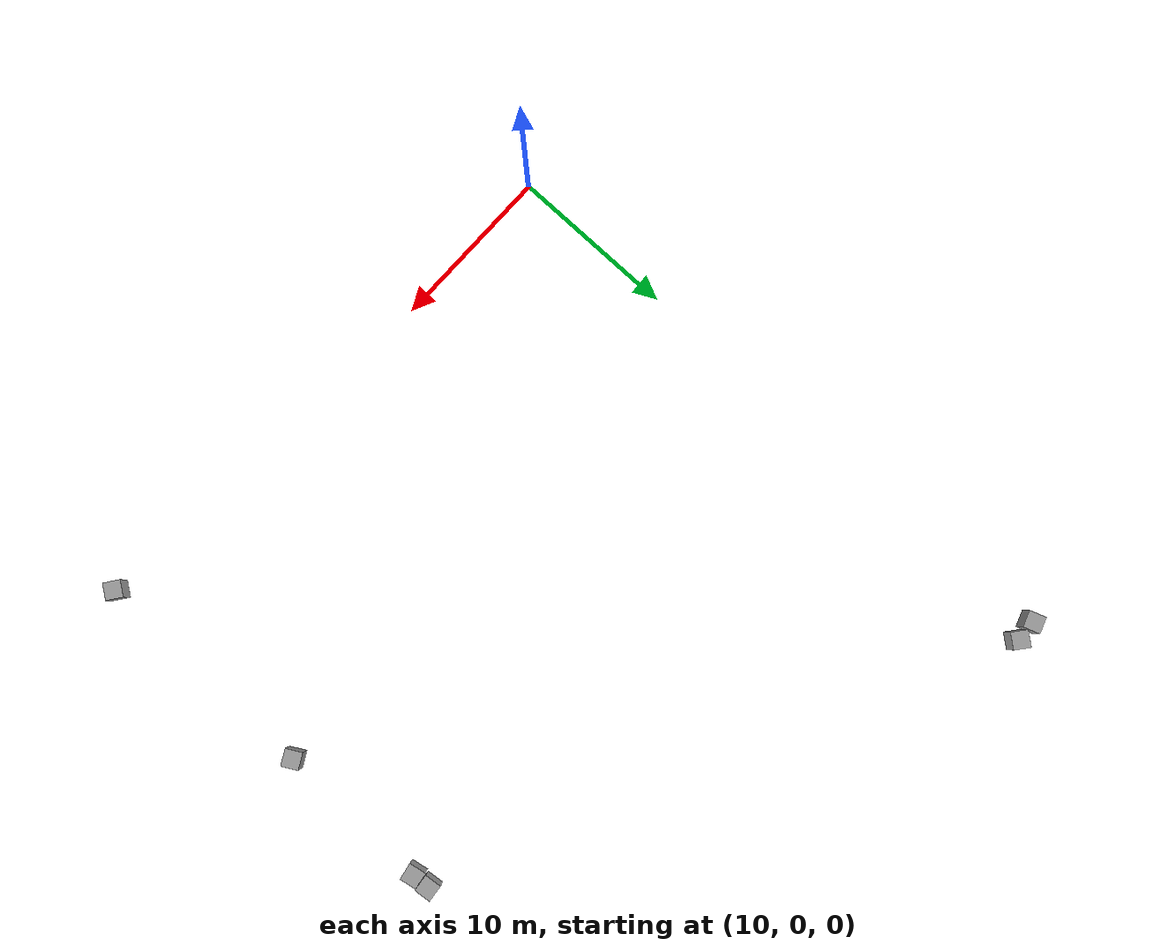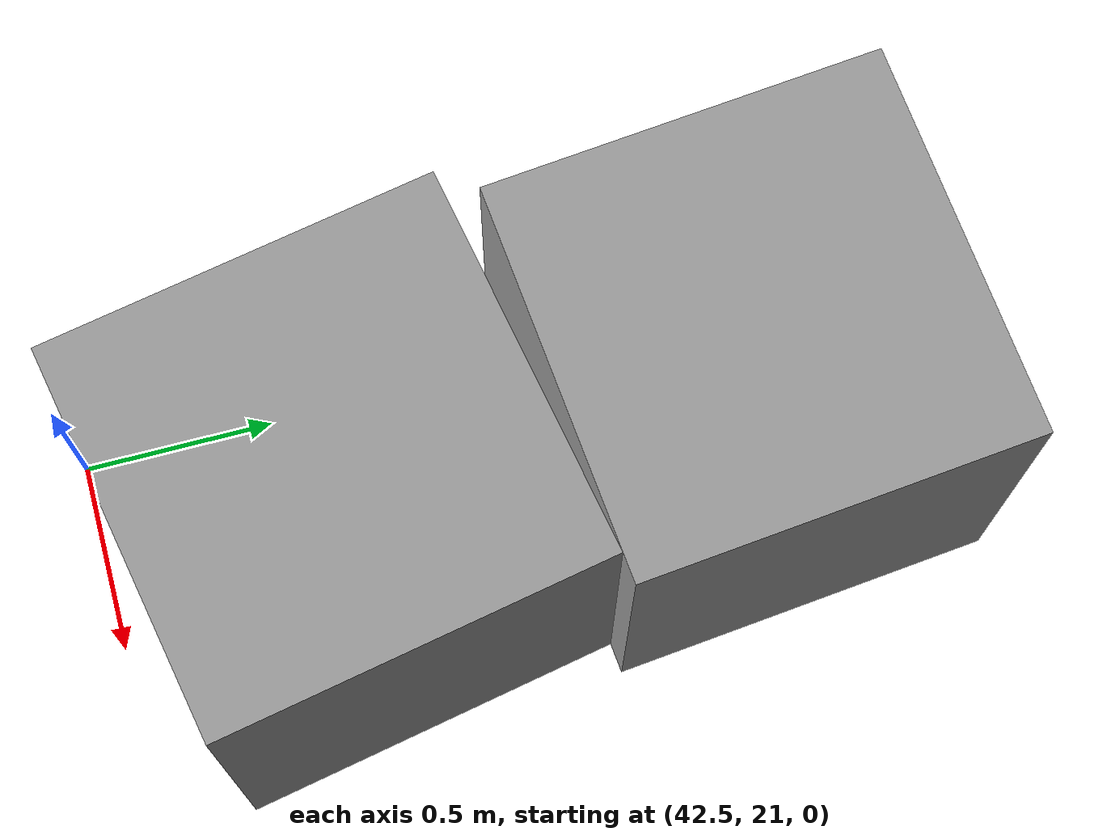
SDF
<sdf version="1.7">
 <world name="default">
  <light name="sun" type="directional">
   <pose>0 0 10 0 -0 0</pose>
   <diffuse>0.8 0.8 0.8 1</diffuse>
   <specular>0.1 0.1 0.1 1</specular>
   <attenuation>
    <range>1000</range>
    <constant>0.9</constant>
    <linear>0.01</linear>
    <quadratic>0.001</quadratic>
   </attenuation>
   <direction>-0.5 0.5 -1</direction>
   <spot><inner_angle>0</inner_angle><outer_angle>0</outer_angle><falloff>0</falloff></spot>
  </light>
  <gravity>0 0 -9.8</gravity>
  <magnetic_field>6e-06 2.3e-05 -4.2e-05</magnetic_field>
  <atmosphere type="adiabatic"/>
  <physics name="default_physics" default="0" type="ode">
   <max_step_size>0.001</max_step_size>
   <real_time_factor>1</real_time_factor>
   <real_time_update_rate>1000</real_time_update_rate>
  </physics>
  <scene>
   <ambient>0.4 0.4 0.4 1</ambient>
   <background>0.7 0.7 0.7 1</background>
   <shadows>1</shadows>
   <grid>0</grid>
  </scene>
  <spherical_coordinates>
   <surface_model>EARTH_WGS84</surface_model>
   <world_frame_orientation>ENU</world_frame_orientation>
   <latitude_deg>0</latitude_deg>
   <longitude_deg>0</longitude_deg>
   <elevation>0</elevation>
   <heading_deg>0</heading_deg>
  </spherical_coordinates>
  <light name="user_point_light_0" type="point">
   <pose>3 3 3 0 -0 0</pose>
   <diffuse>0.5 0.5 0.5 1</diffuse>
   <specular>0.1 0.1 0.1 1</specular>
   <attenuation>
    <range>20</range>
    <constant>0.5</constant>
    <linear>0.01</linear>
    <quadratic>0.001</quadratic>
   </attenuation>
   <cast_shadows>0</cast_shadows>
   <direction>0 0 -1</direction>
   <spot><inner_angle>0</inner_angle><outer_angle>0</outer_angle><falloff>0</falloff></spot>
  </light>
  <light name="user_point_light_3" type="point">
   <pose>-3 -3 3 0 -0 0</pose>
   <diffuse>0.5 0.5 0.5 1</diffuse>
   <specular>0.1 0.1 0.1 1</specular>
   <attenuation>
    <range>20</range>
    <constant>0.5</constant>
    <linear>0.01</linear>
    <quadratic>0.001</quadratic>
   </attenuation>
   <cast_shadows>0</cast_shadows>
   <direction>0 0 -1</direction>
   <spot><inner_angle>0</inner_angle><outer_angle>0</outer_angle><falloff>0</falloff></spot>
  </light>
  <light name="user_point_light_2" type="point">
   <pose>-3 3 3 0 -0 0</pose>
   <diffuse>0.5 0.5 0.5 1</diffuse>
   <specular>0.1 0.1 0.1 1</specular>
   <attenuation>
    <range>20</range>
    <constant>0.5</constant>
    <linear>0.01</linear>
    <quadratic>0.001</quadratic>
   </attenuation>
   <cast_shadows>0</cast_shadows>
   <direction>0 0 -1</direction>
   <spot><inner_angle>0</inner_angle><outer_angle>0</outer_angle><falloff>0</falloff></spot>
  </light>
  <light name="user_point_light_1" type="point">
   <pose>3 -3 3 0 -0 0</pose>
   <diffuse>0.5 0.5 0.5 1</diffuse>
   <specular>0.1 0.1 0.1 1</specular>
   <attenuation>
    <range>20</range>
    <constant>0.5</constant>
    <linear>0.01</linear>
    <quadratic>0.001</quadratic>
   </attenuation>
   <cast_shadows>0</cast_shadows>
   <direction>0 0 -1</direction>
   <spot><inner_angle>0</inner_angle><outer_angle>0</outer_angle><falloff>0</falloff></spot>
  </light>
  <model name="ground_plane">
   <static>1</static>
   <link name="link">
    <collision name="ground_plane_collision">
     <geometry><plane><normal>0 0 1</normal><size>20 20</size></plane></geometry>
     <surface>
      <contact><collide_bitmask>65535</collide_bitmask></contact>
      <friction><ode><mu>100</mu><mu2>50</mu2></ode></friction>
     </surface>
    </collision>
   </link>
  </model>
  <audio><device>default</device></audio>
  <model name="unit_box">
   <pose>42.7388 -1.22692 0.5 0 -0 0.94177</pose>
   <link name="link">
    <inertial>
     <mass>1</mass>
     <inertia>
      <ixx>0.166667</ixx>
      <ixy>0</ixy>
      <ixz>0</ixz>
      <iyy>0.166667</iyy>
      <iyz>0</iyz>
      <izz>0.166667</izz>
     </inertia>
    </inertial>
    <collision name="collision"><geometry><box><size>1 1 1</size></box></geometry></collision>
    <visual name="visual">
     <geometry><box><size>1 1 1</size></box></geometry>
     <material>
      <script><name>Gazebo/Grey</name><uri>file://media/materials/scripts/gazebo.material</uri></script>
     </material>
    </visual>
   </link>
  </model>
  <model name="unit_box_0">
   <pose>42.7884 12.4661 0.499994 0 9e-06 0.501792</pose>
   <link name="link">
    <inertial>
     <mass>1</mass>
     <inertia>
      <ixx>0.166667</ixx>
      <ixy>0</ixy>
      <ixz>0</ixz>
      <iyy>0.166667</iyy>
      <iyz>0</iyz>
      <izz>0.166667</izz>
     </inertia>
    </inertial>
    <collision name="collision"><geometry><box><size>1 1 1</size></box></geometry></collision>
    <visual name="visual">
     <geometry><box><size>1 1 1</size></box></geometry>
     <material>
      <script><name>Gazebo/Grey</name><uri>file://media/materials/scripts/gazebo.material</uri></script>
     </material>
    </visual>
   </link>
  </model>
  <model name="unit_box_1">
   <pose>42.904 21.632 0.499996 0 9e-06 0.188824</pose>
   <link name="link">
    <inertial>
     <mass>1</mass>
     <inertia>
      <ixx>0.166667</ixx>
      <ixy>0</ixy>
      <ixz>0</ixz>
      <iyy>0.166667</iyy>
      <iyz>0</iyz>
      <izz>0.166667</izz>
     </inertia>
    </inertial>
    <collision name="collision"><geometry><box><size>1 1 1</size></box></geometry></collision>
    <visual name="visual">
     <geometry><box><size>1 1 1</size></box></geometry>
     <material>
      <script><name>Gazebo/Grey</name><uri>file://media/materials/scripts/gazebo.material</uri></script>
     </material>
    </visual>
   </link>
  </model>
  <model name="unit_box_2">
   <pose>42.8308 22.6715 0.5 0 -0 0.102418</pose>
   <link name="link">
    <inertial>
     <mass>1</mass>
     <inertia>
      <ixx>0.166667</ixx>
      <ixy>0</ixy>
      <ixz>0</ixz>
      <iyy>0.166667</iyy>
      <iyz>0</iyz>
      <izz>0.166667</izz>
     </inertia>
    </inertial>
    <collision name="collision"><geometry><box><size>1 1 1</size></box></geometry></collision>
    <visual name="visual">
     <geometry><box><size>1 1 1</size></box></geometry>
     <material>
      <script><name>Gazebo/Grey</name><uri>file://media/materials/scripts/gazebo.material</uri></script>
     </material>
    </visual>
   </link>
  </model>
  <model name="unit_box_3">
   <pose>10.9773 37.7617 0.5 0 0 -0.684857</pose>
   <link name="link">
    <inertial>
     <mass>1</mass>
     <inertia>
      <ixx>0.166667</ixx>
      <ixy>0</ixy>
      <ixz>0</ixz>
      <iyy>0.166667</iyy>
      <iyz>0</iyz>
      <izz>0.166667</izz>
     </inertia>
    </inertial>
    <collision name="collision"><geometry><box><size>1 1 1</size></box></geometry></collision>
    <visual name="visual">
     <geometry><box><size>1 1 1</size></box></geometry>
     <material>
      <script><name>Gazebo/Grey</name><uri>file://media/materials/scripts/gazebo.material</uri></script>
     </material>
    </visual>
   </link>
  </model>
  <model name="unit_box_4">
   <pose>9.71095 37.7016 0.5 0 -0 0.336571</pose>
   <link name="link">
    <inertial>
     <mass>1</mass>
     <inertia>
      <ixx>0.166667</ixx>
      <ixy>0</ixy>
      <ixz>0</ixz>
      <iyy>0.166667</iyy>
      <iyz>0</iyz>
      <izz>0.166667</izz>
     </inertia>
    </inertial>
    <collision name="collision"><geometry><box><size>1 1 1</size></box></geometry></collision>
    <visual name="visual">
     <geometry><box><size>1 1 1</size></box></geometry>
     <material>
      <script><name>Gazebo/Grey</name><uri>file://media/materials/scripts/gazebo.material</uri></script>
     </material>
    </visual>
   </link>
  </model>
 </world>
</sdf>
